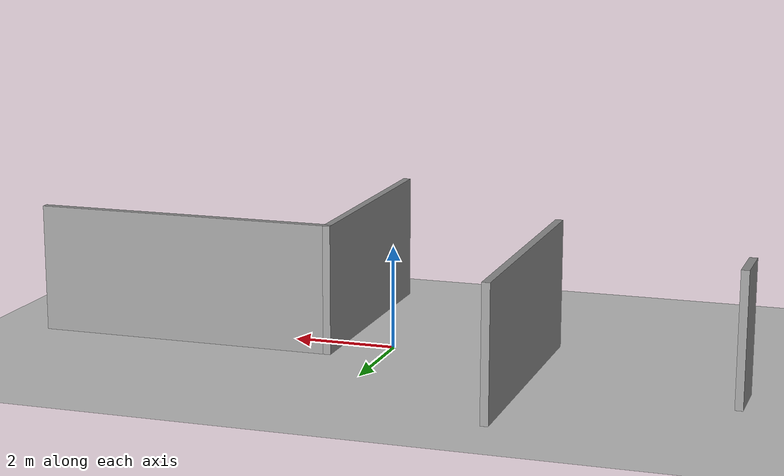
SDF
<?xml version="1.0"?>
<sdf version="1.6">
  <world name="default">

    <plugin
      filename="libgazebo_ros_factory.so"
      name="gazebo_ros_factory">
      <build_default_sdf>true</build_default_sdf>
      <robot_namespace>/</robot_namespace>
    </plugin>

    <include>
      <uri>model://ground_plane</uri>
    </include>

    <include>
      <uri>model://sun</uri>
    </include>

    <scene>
      <shadows>false</shadows>
    </scene>

    <gui fullscreen='0'>
      <camera name='user_camera'>
        <pose frame=''>0.319654 -0.235002 9.29441 0 1.5138 0.009599</pose>
        <view_controller>orbit</view_controller>
        <projection_type>perspective</projection_type>
      </camera>
    </gui>

    <physics type="ode">
      <real_time_update_rate>1000.0</real_time_update_rate>
      <max_step_size>0.001</max_step_size>
      <real_time_factor>1</real_time_factor>
      <ode>
        <solver>
          <type>quick</type>
          <iters>150</iters>
          <precon_iters>0</precon_iters>
          <sor>1.400000</sor>
          <use_dynamic_moi_rescaling>1</use_dynamic_moi_rescaling>
        </solver>
        <constraints>
          <cfm>0.00001</cfm>
          <erp>0.2</erp>
          <contact_max_correcting_vel>2000.000000</contact_max_correcting_vel>
          <contact_surface_layer>0.01000</contact_surface_layer>
        </constraints>
      </ode>
    </physics>

    <include>
      <uri>model://building_1</uri>
      <name>my_custom_building</name> <static>1</static> <pose>0 0 0 0 0 0</pose> </include>

  </world>
</sdf>

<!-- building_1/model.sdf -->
<sdf version='1.7'>
  <model name='building_1'>
    <pose>-3.18777 3.1328 0 0 -0 0</pose>
    <link name='Wall_0'>
      <collision name='Wall_0_Collision'>
        <geometry>
          <box>
            <size>5 0.15 2.5</size>
          </box>
        </geometry>
        <pose>0 0 1.25 0 -0 0</pose>
      </collision>
      <visual name='Wall_0_Visual'>
        <pose>0 0 1.25 0 -0 0</pose>
        <geometry>
          <box>
            <size>5 0.15 2.5</size>
          </box>
        </geometry>
        <material>
          <script>
            <uri>file://media/materials/scripts/gazebo.material</uri>
            <name>Gazebo/Grey</name>
          </script>
          <ambient>1 1 1 1</ambient>
        </material>
        <meta>
          <layer>0</layer>
        </meta>
      </visual>
      <pose>1.05777 -1.64779 0 0 -0 1.5708</pose>
    </link>
    <link name='Wall_2'>
      <collision name='Wall_2_Collision'>
        <geometry>
          <box>
            <size>6 0.15 2.5</size>
          </box>
        </geometry>
        <pose>0 0 1.25 0 -0 0</pose>
      </collision>
      <visual name='Wall_2_Visual'>
        <pose>0 0 1.25 0 -0 0</pose>
        <geometry>
          <box>
            <size>6 0.15 2.5</size>
          </box>
        </geometry>
        <material>
          <script>
            <uri>file://media/materials/scripts/gazebo.material</uri>
            <name>Gazebo/Grey</name>
          </script>
          <ambient>1 1 1 1</ambient>
        </material>
        <meta>
          <layer>0</layer>
        </meta>
      </visual>
      <pose>3.98277 0.777205 0 0 -0 0</pose>
    </link>
    <link name='Wall_4'>
      <collision name='Wall_4_Collision'>
        <geometry>
          <box>
            <size>5.25 0.15 2.5</size>
          </box>
        </geometry>
        <pose>0 0 1.25 0 -0 0</pose>
      </collision>
      <visual name='Wall_4_Visual'>
        <pose>0 0 1.25 0 -0 0</pose>
        <geometry>
          <box>
            <size>5.25 0.15 2.5</size>
          </box>
        </geometry>
        <material>
          <script>
            <uri>file://media/materials/scripts/gazebo.material</uri>
            <name>Gazebo/Grey</name>
          </script>
          <ambient>1 1 1 1</ambient>
        </material>
        <meta>
          <layer>0</layer>
        </meta>
      </visual>
      <pose>-2.95921 1.52279 0 0 -0 -1.5708</pose>
    </link>
    <link name='Wall_6'>
      <collision name='Wall_6_Collision'>
        <geometry>
          <box>
            <size>1 0.15 2.5</size>
          </box>
        </geometry>
        <pose>0 0 1.25 0 -0 0</pose>
      </collision>
      <visual name='Wall_6_Visual'>
        <pose>0 0 1.25 0 -0 0</pose>
        <geometry>
          <box>
            <size>1 0.15 2.5</size>
          </box>
        </geometry>
        <material>
          <script>
            <uri>file://media/materials/scripts/gazebo.material</uri>
            <name>Gazebo/Grey</name>
          </script>
          <ambient>1 1 1 1</ambient>
        </material>
        <meta>
          <layer>0</layer>
        </meta>
      </visual>
      <pose>-6.90777 1.41839 0 0 -0 -1.5708</pose>
    </link>
    <static>1</static>
  </model>
</sdf>
